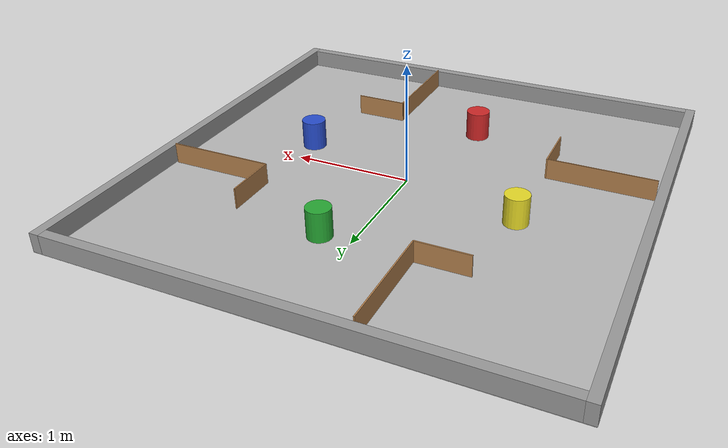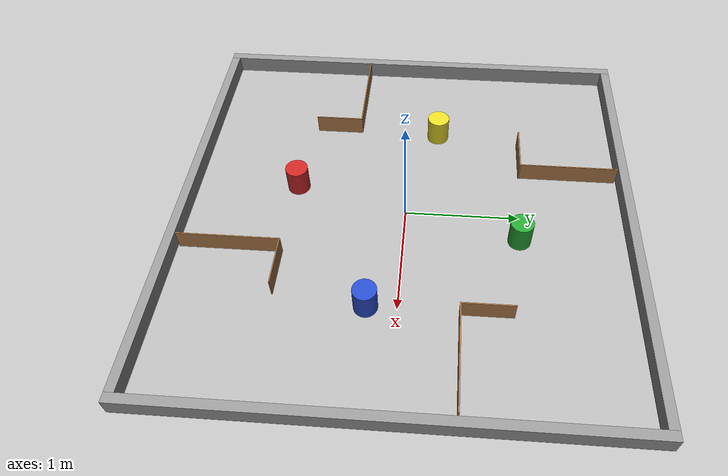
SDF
<sdf version="1.6">
 <world name="default">
  <light name="sun" type="directional">
   <pose>0 0 10 0 -0 0</pose>
   <diffuse>0.8 0.8 0.8 1</diffuse>
   <specular>0.2 0.2 0.2 1</specular>
   <attenuation>
    <range>1000</range>
    <constant>0.9</constant>
    <linear>0.01</linear>
    <quadratic>0.001</quadratic>
   </attenuation>
   <direction>-0.5 0.1 -0.9</direction>
  </light>
  <gravity>0 0 -9.8</gravity>
  <magnetic_field>6e-06 2.3e-05 -4.2e-05</magnetic_field>
  <atmosphere type="adiabatic"/>
  <physics name="default_physics" default="0" type="ode">
   <max_step_size>0.001</max_step_size>
   <real_time_factor>1</real_time_factor>
   <real_time_update_rate>1000</real_time_update_rate>
  </physics>
  <scene><ambient>0.4 0.4 0.4 1</ambient><background>0.7 0.7 0.7 1</background><shadows>1</shadows></scene>
  <spherical_coordinates>
   <surface_model>EARTH_WGS84</surface_model>
   <latitude_deg>0</latitude_deg>
   <longitude_deg>0</longitude_deg>
   <elevation>0</elevation>
   <heading_deg>0</heading_deg>
  </spherical_coordinates>
  <include><uri>model://task2b</uri></include>
  <include><uri>model://cr5_arena_walls</uri></include>
 </world>
</sdf>

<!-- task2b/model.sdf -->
<sdf version="1.4">
<model name="task2b">
  <static>true</static>
    <link name="floor">
      <collision name="collision">
        <geometry>
          <plane>
            <normal>0 0 1</normal>
            <size>4.0 4.0</size>
          </plane>
        </geometry>
        <surface>
          <friction>
            <ode>
              <mu>100</mu>
              <mu2>50</mu2>
            </ode>
          </friction>
        </surface>
      </collision>
      <visual name="visual">
        <cast_shadows>false</cast_shadows>
        <geometry>
          <plane>
            <normal>0 0 1</normal>
            <size>4.0 4.0</size>
          </plane>
        </geometry>
        <material>
          <script>
            <uri>model://task2b/materials/scripts</uri>
            <uri>model://task2b/materials/textures</uri>
            <name>Task2bFloor/Image</name>
          </script>
        </material>
      </visual>
    </link>
    <link name='YEL'>
      <pose frame=''>-1 0.25 0.125 0 0 0</pose>
      <collision name='coll'>
        <geometry>
          <cylinder>
            <radius>0.1</radius>
            <length>0.25</length>
          </cylinder>
        </geometry>
        <max_contacts>10</max_contacts>
        <surface>
          <bounce/>
          <friction>
            <ode/>
          </friction>
          <contact>
            <ode/>
          </contact>
        </surface>
      </collision>
      <visual name='vis'>
        <geometry>
          <cylinder>
            <radius>0.1</radius>
            <length>0.25</length>
          </cylinder>
        </geometry>
        <material>
          <script>
            <uri>file://media/materials/scripts/gazebo.material</uri>
            <name>Gazebo/Yellow</name>
          </script>
        </material>
      </visual>
    </link>
    <link name='GRN'>
      <pose frame=''>0.25 1 0.125 0 0 0</pose>
      <collision name='coll'>
        <geometry>
          <cylinder>
            <radius>0.1</radius>
            <length>0.25</length>
          </cylinder>
        </geometry>
        <max_contacts>10</max_contacts>
        <surface>
          <bounce/>
          <friction>
            <ode/>
          </friction>
          <contact>
            <ode/>
          </contact>
        </surface>
      </collision>
      <visual name='vis'>
        <geometry>
          <cylinder>
            <radius>0.1</radius>
            <length>0.25</length>
          </cylinder>
        </geometry>
        <material>
          <script>
            <uri>file://media/materials/scripts/gazebo.material</uri>
            <name>Gazebo/Green</name>
          </script>
        </material>
      </visual>
    </link>
    <link name='BLU'>
      <pose frame=''>1 -0.25 0.125 0 0 0</pose>
      <collision name='coll'>
        <geometry>
          <cylinder>
            <radius>0.1</radius>
            <length>0.25</length>
          </cylinder>
        </geometry>
        <max_contacts>10</max_contacts>
        <surface>
          <bounce/>
          <friction>
            <ode/>
          </friction>
          <contact>
            <ode/>
          </contact>
        </surface>
      </collision>
      <visual name='vis'>
        <geometry>
          <cylinder>
            <radius>0.1</radius>
            <length>0.25</length>
          </cylinder>
        </geometry>
        <material>
          <script>
            <uri>file://media/materials/scripts/gazebo.material</uri>
            <name>Gazebo/Blue</name>
          </script>
        </material>
      </visual>
    </link>
    <link name='RED'>
      <pose frame=''>-0.25 -1 0.125 0 0 0</pose>
      <collision name='coll'>
        <geometry>
          <cylinder>
            <radius>0.1</radius>
            <length>0.25</length>
          </cylinder>
        </geometry>
        <max_contacts>10</max_contacts>
        <surface>
          <bounce/>
          <friction>
            <ode/>
          </friction>
          <contact>
            <ode/>
          </contact>
        </surface>
      </collision>
      <visual name='vis'>
        <geometry>
          <cylinder>
            <radius>0.1</radius>
            <length>0.25</length>
          </cylinder>
        </geometry>
        <material>
          <script>
            <uri>file://media/materials/scripts/gazebo.material</uri>
            <name>Gazebo/Red</name>
          </script>
        </material>
      </visual>
    </link>

    <link name='wall_asm1'>
      <pose frame=''>-1.46 -0.72 0.09 0 0 0</pose>
        <collision name='long_col'>
          <pose frame=''>-0.005 0.22 0 0 0 0</pose>
          <geometry>
            <box>
              <size>0.88 0.01 0.18</size>
            </box>
          </geometry>
        </collision>
        <visual name='long_vis'>
          <pose frame=''>-0.005 0.22 0 0 0 0</pose>
          <geometry>
            <box>
              <size>0.88 0.01 0.18</size>
            </box>
          </geometry>
          <material>
            <script>
              <uri>file://media/materials/scripts/gazebo.material</uri>
              <name>Gazebo/Wood</name>
            </script>
          </material>
        </visual>
        <collision name='short_coll'>
          <pose frame=''>0.44 0.005 0 0 0 0</pose>
          <geometry>
            <box>
              <size>0.01 0.44 0.18</size>
            </box>
          </geometry>
        </collision>
        <visual name='short_vis'>
          <pose frame=''>0.44 0.005 0 0 0 0</pose>
          <geometry>
            <box>
              <size>0.01 0.44 0.18</size>
            </box>
          </geometry>
          <material>
            <script>
              <uri>file://media/materials/scripts/gazebo.material</uri>
              <name>Gazebo/Wood</name>
            </script>
          </material>
        </visual>
    </link>

    <link name='wall_asm2'>
      <pose frame=''>-0.72 1.46 0.09 0 0 -1.571</pose>
        <collision name='long_col'>
          <pose frame=''>-0.005 0.22 0 0 0 0</pose>
          <geometry>
            <box>
              <size>0.88 0.01 0.18</size>
            </box>
          </geometry>
        </collision>
        <visual name='long_vis'>
          <pose frame=''>-0.005 0.22 0 0 0 0</pose>
          <geometry>
            <box>
              <size>0.88 0.01 0.18</size>
            </box>
          </geometry>
          <material>
            <script>
              <uri>file://media/materials/scripts/gazebo.material</uri>
              <name>Gazebo/Wood</name>
            </script>
          </material>
        </visual>
        <collision name='short_coll'>
          <pose frame=''>0.44 0.005 0 0 0 0</pose>
          <geometry>
            <box>
              <size>0.01 0.44 0.18</size>
            </box>
          </geometry>
        </collision>
        <visual name='short_vis'>
          <pose frame=''>0.44 0.005 0 0 0 0</pose>
          <geometry>
            <box>
              <size>0.01 0.44 0.18</size>
            </box>
          </geometry>
          <material>
            <script>
              <uri>file://media/materials/scripts/gazebo.material</uri>
              <name>Gazebo/Wood</name>
            </script>
          </material>
        </visual>
    </link>

    <link name='wall_asm3'>
      <pose frame=''>1.46 0.72 0.09 0 0 3.142</pose>
        <collision name='long_col'>
          <pose frame=''>-0.005 0.22 0 0 0 0</pose>
          <geometry>
            <box>
              <size>0.88 0.01 0.18</size>
            </box>
          </geometry>
        </collision>
        <visual name='long_vis'>
          <pose frame=''>-0.005 0.22 0 0 0 0</pose>
          <geometry>
            <box>
              <size>0.88 0.01 0.18</size>
            </box>
          </geometry>
          <material>
            <script>
              <uri>file://media/materials/scripts/gazebo.material</uri>
              <name>Gazebo/Wood</name>
            </script>
          </material>
        </visual>
        <collision name='short_coll'>
          <pose frame=''>0.44 0.005 0 0 0 0</pose>
          <geometry>
            <box>
              <size>0.01 0.44 0.18</size>
            </box>
          </geometry>
        </collision>
        <visual name='short_vis'>
          <pose frame=''>0.44 0.005 0 0 0 0</pose>
          <geometry>
            <box>
              <size>0.01 0.44 0.18</size>
            </box>
          </geometry>
          <material>
            <script>
              <uri>file://media/materials/scripts/gazebo.material</uri>
              <name>Gazebo/Wood</name>
            </script>
          </material>
        </visual>
    </link>

    <link name='wall_asm4'>
      <pose frame=''>0.72 -1.46 0.09 0 0 1.571</pose>
        <collision name='long_col'>
          <pose frame=''>-0.005 0.22 0 0 0 0</pose>
          <geometry>
            <box>
              <size>0.88 0.01 0.18</size>
            </box>
          </geometry>
        </collision>
        <visual name='long_vis'>
          <pose frame=''>-0.005 0.22 0 0 0 0</pose>
          <geometry>
            <box>
              <size>0.88 0.01 0.18</size>
            </box>
          </geometry>
          <material>
            <script>
              <uri>file://media/materials/scripts/gazebo.material</uri>
              <name>Gazebo/Wood</name>
            </script>
          </material>
        </visual>
        <collision name='short_coll'>
          <pose frame=''>0.44 0.005 0 0 0 0</pose>
          <geometry>
            <box>
              <size>0.01 0.44 0.18</size>
            </box>
          </geometry>
        </collision>
        <visual name='short_vis'>
          <pose frame=''>0.44 0.005 0 0 0 0</pose>
          <geometry>
            <box>
              <size>0.01 0.44 0.18</size>
            </box>
          </geometry>
          <material>
            <script>
              <uri>file://media/materials/scripts/gazebo.material</uri>
              <name>Gazebo/Wood</name>
            </script>
          </material>
        </visual>
    </link>

  </model>
</sdf>

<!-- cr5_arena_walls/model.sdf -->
<sdf version='1.6'>
  <model name='cr5_arena_walls'>
    <pose frame=''>0 0 0.08 0 0 0</pose>
    <link name='Right_Wall'>
      <collision name='Right_Wall_Collision'>
        <geometry>
          <box>
            <size>3.84 0.08 0.16</size>
          </box>
        </geometry>
      </collision>
      <visual name='Right_Wall_Visual'>
        <geometry>
          <box>
            <size>3.84 0.08 0.16</size>
          </box>
        </geometry>
        <material>
          <script>
            <uri>file://media/materials/scripts/gazebo.material</uri>
            <name>Gazebo/Grey</name>
          </script>
          <ambient>1 1 1 1</ambient>
        </material>
      </visual>
      <density>4000.0</density>
      <pose frame=''>0 1.96 0 0 0 0</pose>
    </link>
    <link name='Back_Wall'>
      <collision name='Back_Wall_Collision'>
        <geometry>
          <box>
            <size>0.08 4.00 0.16</size>
          </box>
        </geometry>
      </collision>
      <visual name='Back_Wall_Visual'>
        <geometry>
          <box>
            <size>0.08 4.00 0.16</size>
          </box>
        </geometry>
        <material>
          <script>
            <uri>file://media/materials/scripts/gazebo.material</uri>
            <name>Gazebo/Grey</name>
          </script>
          <ambient>1 1 1 1</ambient>
        </material>
      </visual>
      <density>4000.0</density>
      <pose frame=''>-1.96 0 0 0 0 0</pose>
    </link>
    <link name='Left_Wall'>
      <collision name='Left_Wall_Collision'>
        <geometry>
          <box>
            <size>3.84 0.08 0.16</size>
          </box>
        </geometry>
      </collision>
      <visual name='Left_Wall_Visual'>
        <geometry>
          <box>
            <size>3.84 0.08 0.16</size>
          </box>
        </geometry>
        <material>
          <script>
            <uri>file://media/materials/scripts/gazebo.material</uri>
            <name>Gazebo/Grey</name>
          </script>
          <ambient>1 1 1 1</ambient>
        </material>
      </visual>
      <density>4000.0</density>
      <pose frame=''>0 -1.96 0 0 0 0</pose>
    </link>
    <link name='Front_Wall'>
      <collision name='Front_Wall_Collision'>
        <geometry>
          <box>
            <size>0.08 4.00 0.16</size>
          </box>
        </geometry>
      </collision>
      <visual name='Front_Wall_Visual'>
        <geometry>
          <box>
            <size>0.08 4.00 0.16</size>
          </box>
        </geometry>
        <material>
          <script>
            <uri>file://media/materials/scripts/gazebo.material</uri>
            <name>Gazebo/Grey</name>
          </script>
          <ambient>1 1 1 1</ambient>
        </material>
      </visual>
      <density>4000.0</density>
      <pose frame=''>1.96 0 0 0 0 0</pose>
    </link>
    <static>false</static>
  </model>
</sdf>
